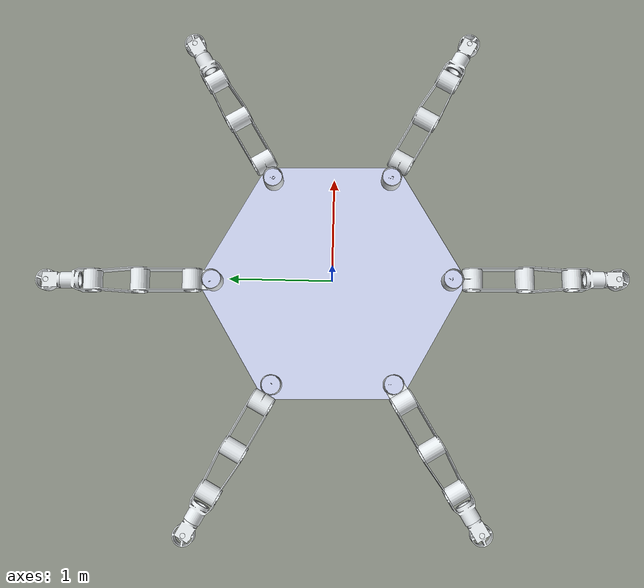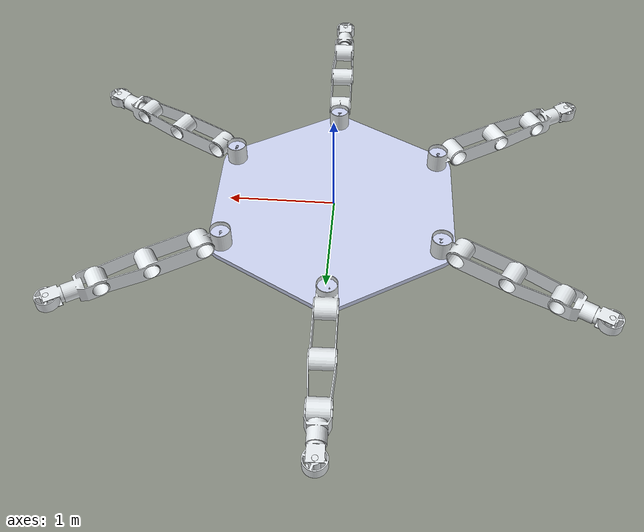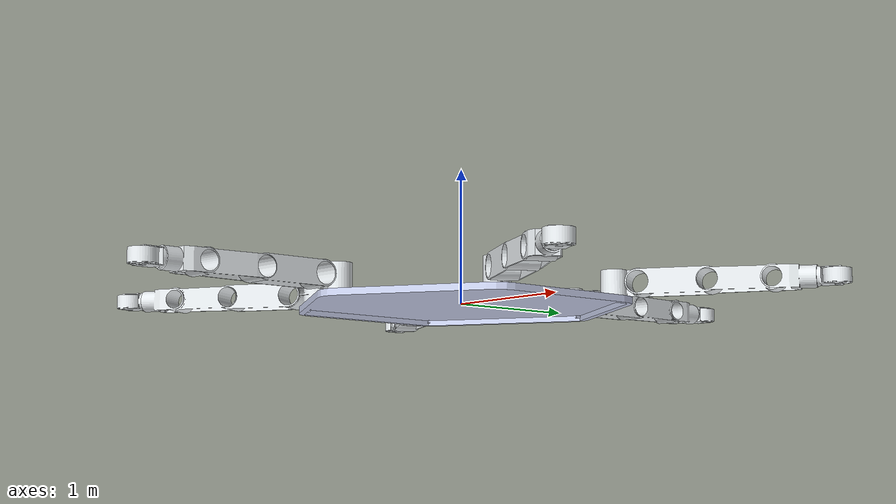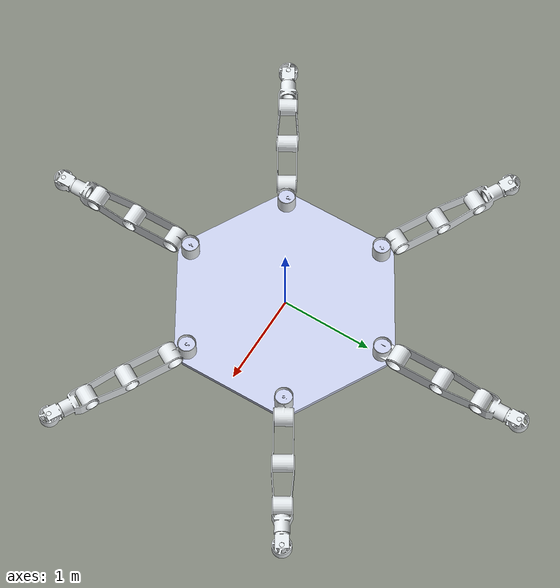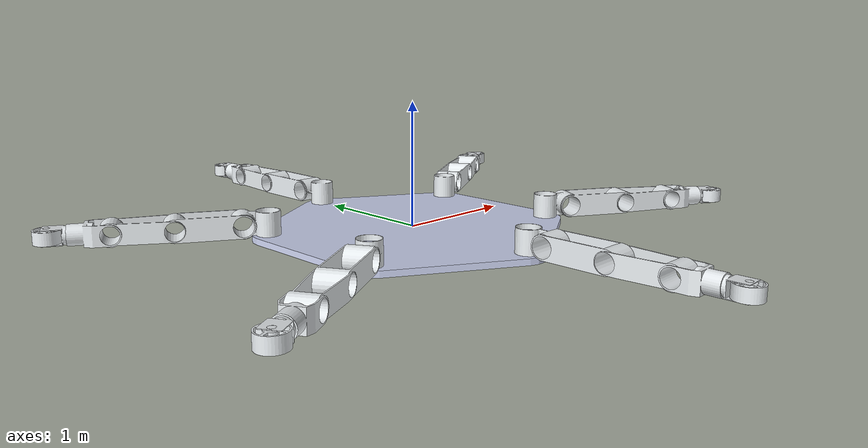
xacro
<?xml version="1.0"?>
<!-- Name your robot here -->
<robot name ="athlete_rover" xmlns:xacro="http://wiki.ros.org/xacro">

<!-- Include your urdf files here -->
	<!-- Include Robot's urdf filepath -->
	<!-- Include Lidar's urdf filepath -->
	<xacro:include filename="$(find athlete_rover)/urdf/athlete_rover.urdf"/>

<!-- Add your gazebo sensors here -->

<!--  Gazebo plugin for control here is already added for you -->
	<gazebo>
		<plugin name="gazebo_ros_control" filename="libgazebo_ros_control.so">
        <robotNamespace>/athlete_rover</robotNamespace>
		</plugin>
	</gazebo>

<!-- Create a joint between your robot and sensor -->

</robot>
